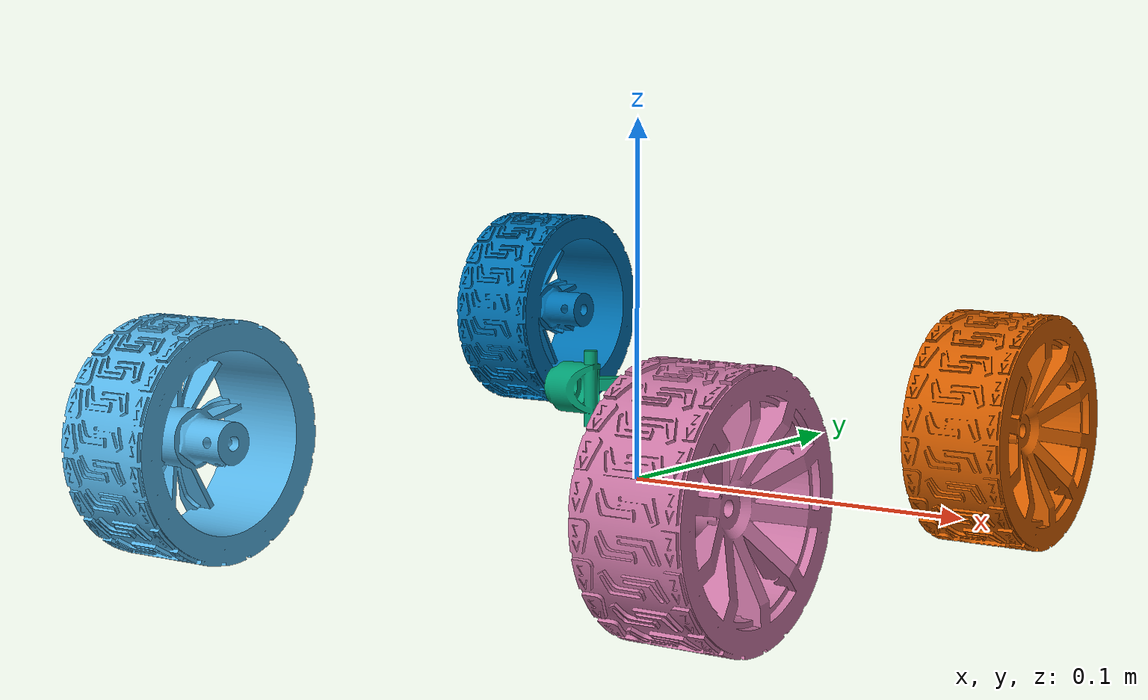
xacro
<?xml version='1.0' encoding='utf-8'?>
<robot name="Jetracer">
    <link name="Base_link">
        <inertial>
            <origin xyz="0.0016533027608847484 0.0033918428429015692 0.03234130593918531" rpy="0.0 0.0 0.0" />
            <mass value="1.1769135204496393" />
            <inertia ixx="0.004714734823864771" iyy="0.0017260217976734955" izz="0.004958583829422461" ixy="2.263671527874395e-05" iyz="0.0003403355352982235" ixz="-6.326913363583603e-05" />
        </inertial>
        <visual name="Base_link_visual">
            <origin xyz="0.0 0.0 0.0" rpy="0.0 0.0 0.0" />
            <geometry>
                <mesh filename="meshes/Base_link.stl" scale="0.001 0.001 0.001" />
            </geometry>
        </visual>
        <collision name="Base_link_collision">
            <origin xyz="0.0 0.0 0.0" rpy="0.0 0.0 0.0" />
            <geometry>
                <mesh filename="meshes/Base_link.stl" scale="0.001 0.001 0.001" />
            </geometry>
        </collision>
    </link>
    <link name="Back_left_wheel_link">
        <inertial>
            <origin xyz="2.9305549778111394e-05 0.0004285825661594167 -0.002222785078411276" rpy="0.0 -0.0 0.0" />
            <mass value="0.054301755990382804" />
            <inertia ixx="1.8750879631247936e-05" iyy="1.8777013070598843e-05" izz="3.0157352809619088e-05" ixy="2.0185746688663154e-09" iyz="2.507426271228687e-08" ixz="1.7150871602248522e-09" />
        </inertial>
        <visual name="Back_left_wheel_link_visual">
            <origin xyz="-8.368700843419675e-11 -3.694822225952521e-15 4.0323300254385686e-15" rpy="-3.1415926535897913 -5.860218245151712e-14 6.1428794553838615e-15" />
            <geometry>
                <mesh filename="meshes/Back_left_wheel_link.stl" scale="0.001 0.001 0.001" />
            </geometry>
        </visual>
        <collision name="Back_left_wheel_link_collision">
            <origin xyz="-8.368700843419675e-11 -3.694822225952521e-15 4.0323300254385686e-15" rpy="-3.1415926535897913 -5.860218245151712e-14 6.1428794553838615e-15" />
            <geometry>
                <mesh filename="meshes/Back_left_wheel_link.stl" scale="0.001 0.001 0.001" />
            </geometry>
        </collision>
    </link>
    <link name="Control_left_wheel_link">
        <inertial>
            <origin xyz="-0.003309563250362881 -0.0053147845774694155 0.01200000027243138" rpy="0.0 -0.0 2.7369110631344096e-48" />
            <mass value="0.0022633439186205456" />
            <inertia ixx="2.3321617796315722e-07" iyy="1.1982252143935933e-07" izz="2.609982653239237e-07" ixy="7.588558546818317e-08" iyz="-5.316368380513132e-15" ixz="-6.531687210087996e-16" />
        </inertial>
        <visual name="Control_left_wheel_link_visual">
            <origin xyz="-0.013692779328301229 8.136428600229451e-06 0.011999999999998909" rpy="-3.1415926535897927 1.5707963267948903 0" />
            <geometry>
                <mesh filename="meshes/Control_left_wheel_link.stl" scale="0.001 0.001 0.001" />
            </geometry>
        </visual>
        <collision name="Control_left_wheel_link_collision">
            <origin xyz="-0.013692779328301229 8.136428600229451e-06 0.011999999999998909" rpy="-3.1415926535897927 1.5707963267948903 0" />
            <geometry>
                <mesh filename="meshes/Control_left_wheel_link.stl" scale="0.001 0.001 0.001" />
            </geometry>
        </collision>
    </link>
    <link name="Lidar_link">
        <inertial>
            <origin xyz="-0.028239426420146697 0.050918484442553716 6.461931578050084e-05" rpy="0.0 -0.0 2.7369110631344096e-48" />
            <mass value="0.08486622487588467" />
            <inertia ixx="7.212810687965462e-05" iyy="2.7441257171710797e-05" izz="8.077472261566897e-05" ixy="-7.125364902931029e-07" iyz="-1.2837113244875541e-05" ixz="-3.6800518425488944e-07" />
        </inertial>
        <visual name="Lidar_link_visual">
            <origin xyz="-0.02800000440000023 0.07349999799999726 -0.009199999999997122" rpy="-3.141592653589793 -7.857016643340856e-15 1.5707963267948941" />
            <geometry>
                <mesh filename="meshes/Lidar_link.stl" scale="0.001 0.001 0.001" />
            </geometry>
        </visual>
        <collision name="Lidar_link_collision">
            <origin xyz="-0.02800000440000023 0.07349999799999726 -0.009199999999997122" rpy="-3.141592653589793 -7.857016643340856e-15 1.5707963267948941" />
            <geometry>
                <mesh filename="meshes/Lidar_link.stl" scale="0.001 0.001 0.001" />
            </geometry>
        </collision>
    </link>
    <link name="Front_left_wheel_link">
        <inertial>
            <origin xyz="-0.015329784406716503 0.00042857899476373085 -2.930563346617232e-05" rpy="0.0 -0.0 0.0" />
            <mass value="0.05430175599038286" />
            <inertia ixx="3.0157352809619223e-05" iyy="1.8777013070599223e-05" izz="1.8750879631248044e-05" ixy="2.5074262712313205e-08" iyz="-2.0185746688459907e-09" ixz="-1.7150871619786502e-09" />
        </inertial>
        <visual name="Front_left_wheel_link_visual">
            <origin xyz="-0.013106999328301158 -3.5713994162023255e-09 -1.0902390101819038e-15" rpy="-3.1415926535897922 1.57079632679489 0" />
            <geometry>
                <mesh filename="meshes/Front_left_wheel_link.stl" scale="0.001 0.001 0.001" />
            </geometry>
        </visual>
        <collision name="Front_left_wheel_link_collision">
            <origin xyz="-0.013106999328301158 -3.5713994162023255e-09 -1.0902390101819038e-15" rpy="-3.1415926535897922 1.57079632679489 0" />
            <geometry>
                <mesh filename="meshes/Front_left_wheel_link.stl" scale="0.001 0.001 0.001" />
            </geometry>
        </collision>
    </link>
    <link name="Front_right_wheel_link">
        <inertial>
            <origin xyz="0.01532978440671709 -0.00042858613756155964 -2.9305633465739334e-05" rpy="0.0 -0.0 0.0" />
            <mass value="0.05430175599038282" />
            <inertia ixx="3.0157352809619088e-05" iyy="1.8777013070598897e-05" izz="1.8750879631247827e-05" ixy="2.5074262712421625e-08" iyz="2.0185746688392145e-09" ixz="1.715087161843125e-09" />
        </inertial>
        <visual name="Front_right_wheel_link_visual">
            <origin xyz="0.013106999328301764 -3.5713984747332006e-09 -5.795364188543317e-16" rpy="-5.855923348111018e-15 1.570796326794886 0" />
            <geometry>
                <mesh filename="meshes/Front_right_wheel_link.stl" scale="0.001 0.001 0.001" />
            </geometry>
        </visual>
        <collision name="Front_right_wheel_link_collision">
            <origin xyz="0.013106999328301764 -3.5713984747332006e-09 -5.795364188543317e-16" rpy="-5.855923348111018e-15 1.570796326794886 0" />
            <geometry>
                <mesh filename="meshes/Front_right_wheel_link.stl" scale="0.001 0.001 0.001" />
            </geometry>
        </collision>
    </link>
    <link name="Back_right_wheel_link">
        <inertial>
            <origin xyz="-2.9305717152134926e-05 0.0004285825661590259 0.002222785078411231" rpy="0.0 -0.0 0.0" />
            <mass value="0.05430175599038278" />
            <inertia ixx="1.8750879631247827e-05" iyy="1.877701307059868e-05" izz="3.0157352809619142e-05" ixy="-2.018574668947631e-09" iyz="-2.5074262712396793e-08" ixz="1.7150871637732448e-09" />
        </inertial>
        <visual name="Back_right_wheel_link_visual">
            <origin xyz="-8.368699067062835e-11 -4.0145664570445665e-15 -4.076738946423575e-15" rpy="-1.122715724078533e-15 -5.83598131927346e-14 -3.1415926535897873" />
            <geometry>
                <mesh filename="meshes/Back_right_wheel_link.stl" scale="0.001 0.001 0.001" />
            </geometry>
        </visual>
        <collision name="Back_right_wheel_link_collision">
            <origin xyz="-8.368699067062835e-11 -4.0145664570445665e-15 -4.076738946423575e-15" rpy="-1.122715724078533e-15 -5.83598131927346e-14 -3.1415926535897873" />
            <geometry>
                <mesh filename="meshes/Back_right_wheel_link.stl" scale="0.001 0.001 0.001" />
            </geometry>
        </collision>
    </link>
    <link name="Control_right_wheel_link">
        <inertial>
            <origin xyz="0.0033095632503634675 -0.005314784577468403 0.011999999727566987" rpy="0.0 -0.0 2.7369110631344096e-48" />
            <mass value="0.0022633439186205456" />
            <inertia ixx="2.3321617796315722e-07" iyy="1.1982252143936103e-07" izz="2.609982653239169e-07" ixy="-7.588558546818486e-08" iyz="5.316368019691284e-15" ixz="-6.531691108253036e-16" />
        </inertial>
        <visual name="Control_right_wheel_link_visual">
            <origin xyz="0.013692779328301815 8.1364286015706e-06 0.01199999999999946" rpy="3.1415926535897913 -1.5707963267948855 0" />
            <geometry>
                <mesh filename="meshes/Control_right_wheel_link.stl" scale="0.001 0.001 0.001" />
            </geometry>
        </visual>
        <collision name="Control_right_wheel_link_collision">
            <origin xyz="0.013692779328301815 8.1364286015706e-06 0.01199999999999946" rpy="3.1415926535897913 -1.5707963267948855 0" />
            <geometry>
                <mesh filename="meshes/Control_right_wheel_link.stl" scale="0.001 0.001 0.001" />
            </geometry>
        </collision>
    </link>
    <joint name="Control_left_joint" type="continuous">
        <origin xyz="-0.06000000000000318 0.06000000000000318 0.025799999999999795" rpy="3.141592653589785 7.762887554995295e-17 -2.0933157334479724e-15" />
        <parent link="Base_link" />
        <child link="Control_left_wheel_link" />
        <axis xyz="1.232595164407831e-32 2.220446049250314e-16 1.0" />
    </joint>
    <joint name="Back_left_wheel_joint" type="continuous">
        <origin xyz="-0.07830000000000438 -0.09000000000000409 0.015298850000000884" rpy="3.1415926535897887 -1.5707963267948906 0" />
        <parent link="Base_link" />
        <child link="Back_left_wheel_link" />
        <axis xyz="0.0 -2.303712776096894e-15 1.0" />
    </joint>
    <joint name="Front_left_wheel_joint" type="continuous">
        <origin xyz="-0.005192779999999999 8.140000000009807e-06 0.012000000000000002" rpy="-2.220446049250314e-16 1.2325951644078504e-32 8.712952773709936e-31" />
        <parent link="Control_left_wheel_link" />
        <child link="Front_left_wheel_link" />
        <axis xyz="1.0 0.0 0.0" />
    </joint>
    <joint name="Back_right_wheel_joint" type="continuous">
        <origin xyz="0.07830000000000423 -0.09000000000000441 0.01529885000000087" rpy="-3.141592653589793 -1.5707963267948906 0" />
        <parent link="Base_link" />
        <child link="Back_right_wheel_link" />
        <axis xyz="0.0 2.1926904736343785e-15 1.0" />
    </joint>
    <joint name="Front_right_wheel_joint" type="continuous">
        <origin xyz="0.005192779999999999 8.140000000009807e-06 0.012000000000000002" rpy="-2.2204460492503155e-16 1.2325951644078153e-32 -7.064265330710301e-31" />
        <parent link="Control_right_wheel_link" />
        <child link="Front_right_wheel_link" />
        <axis xyz="-1.0 0.0 0.0" />
    </joint>
    <joint name="Control_right_joint" type="continuous">
        <origin xyz="0.06000000000000339 0.06000000000000293 0.02579999999999979" rpy="3.141592653589785 7.762887554995295e-17 -2.0933157334479724e-15" />
        <parent link="Base_link" />
        <child link="Control_right_wheel_link" />
        <axis xyz="1.232595164407831e-32 2.220446049250314e-16 1.0" />
    </joint>
    <joint name="Lidar_joint" type="fixed">
        <origin xyz="0.0279999600000016 0.032999950000002144 0.09997548000000103" rpy="3.141592653589785 7.762887554995295e-17 -2.0933157334479724e-15" />
        <parent link="Base_link" />
        <child link="Lidar_link" />
    </joint>
</robot>
